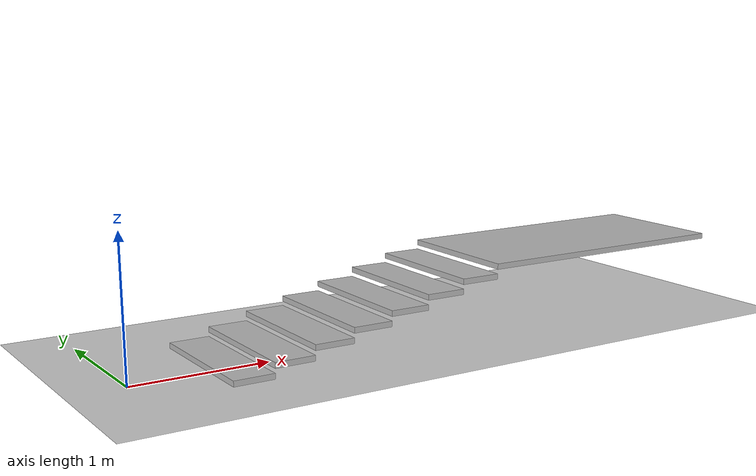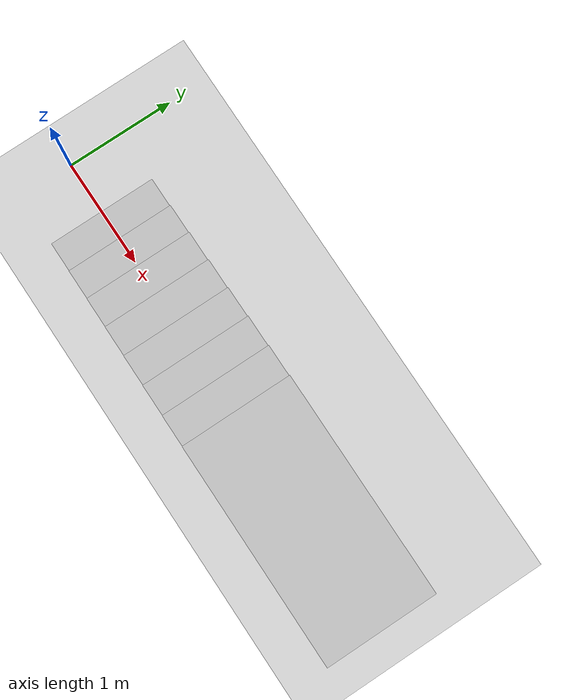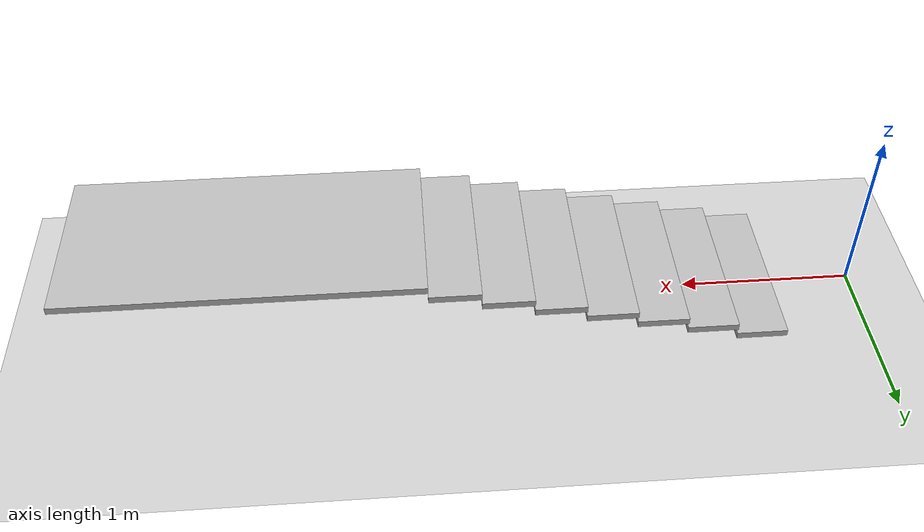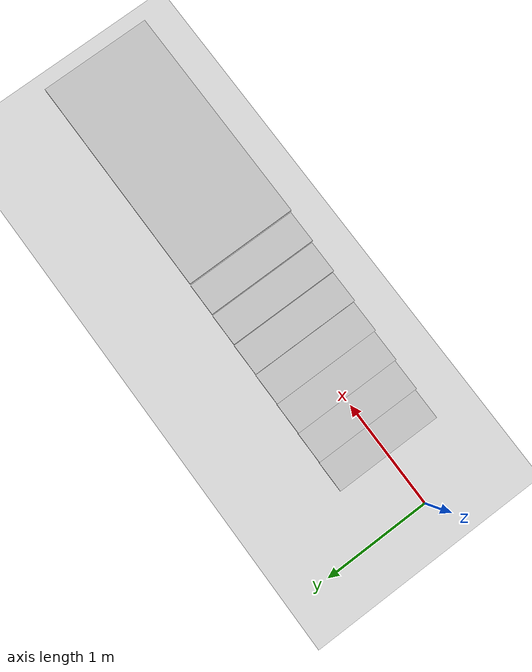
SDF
<?xml version="1.0" ?>
<sdf version="1.4">
  <world name="default">
    <include>
      <uri>model://ground_plane</uri>
    </include>
    <include>
      <uri>model://sun</uri>
    </include>
    <include>
    <uri>model://models/stairs</uri>
    </include>

    <physics type="ode">
      <gravity>0 0 -9.81</gravity>
    </physics>
  </world>
</sdf>

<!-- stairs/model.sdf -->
<sdf version='1.4'>
  <model name="stairs">
    <static>true</static>
    <pose>0.5 0 0 0 0 0</pose>

    <link name='stairs1'>
      <pose>0.145 0 0.07 0 0 0</pose>

      <collision name='collision'>
        <geometry>
          <box>
            <size>0.29 1.0 0.04</size>
          </box>
        </geometry>
      </collision>

      <visual name='visual'>
        <geometry>
          <box>
            <size>0.29 1.0 0.04</size>
          </box>
        </geometry>
      </visual>
    </link>

    <link name='stairs2'>
      <pose>0.435 0 0.14 0 0 0</pose>

      <collision name='collision'>
        <geometry>
          <box>
            <size>0.29 1.0 0.04</size>
          </box>
        </geometry>
      </collision>

      <visual name='visual'>
        <geometry>
          <box>
            <size>0.29 1.0 0.04</size>
          </box>
        </geometry>
      </visual>
    </link>

    <link name='stairs3'>
      <pose>0.725 0 0.21 0 0 0</pose>

      <collision name='collision'>
        <geometry>
          <box>
            <size>0.29 1.0 0.04</size>
          </box>
        </geometry>
      </collision>

      <visual name='visual'>
        <geometry>
          <box>
            <size>0.29 1.0 0.04</size>
          </box>
        </geometry>
      </visual>
    </link>

    <link name='stairs4'>
      <pose>1.015 0 0.28 0 0 0</pose>

      <collision name='collision'>
        <geometry>
          <box>
            <size>0.29 1.0 0.04</size>
          </box>
        </geometry>
      </collision>

      <visual name='visual'>
        <geometry>
          <box>
            <size>0.29 1.0 0.04</size>
          </box>
        </geometry>
      </visual>
    </link>

    <link name='stairs5'>
      <pose>1.305 0 0.35 0 0 0</pose>

      <collision name='collision'>
        <geometry>
          <box>
            <size>0.29 1.0 0.04</size>
          </box>
        </geometry>
      </collision>

      <visual name='visual'>
        <geometry>
          <box>
            <size>0.29 1.0 0.04</size>
          </box>
        </geometry>
      </visual>
    </link>

    <link name='stairs6'>
      <pose>1.595 0 0.42 0 0 0</pose>

      <collision name='collision'>
        <geometry>
          <box>
            <size>0.29 1.0 0.04</size>
          </box>
        </geometry>
      </collision>

      <visual name='visual'>
        <geometry>
          <box>
            <size>0.29 1.0 0.04</size>
          </box>
        </geometry>
      </visual>
    </link>

    <link name='stairs7'>
      <pose>1.885 0 0.49 0 0 0</pose>

      <collision name='collision'>
        <geometry>
          <box>
            <size>0.29 1.0 0.04</size>
          </box>
        </geometry>
      </collision>

      <visual name='visual'>
        <geometry>
          <box>
            <size>0.29 1.0 0.04</size>
          </box>
        </geometry>
      </visual>
    </link>

    <link name='top'>
      <pose>3.03 0 0.56 0 0 0</pose>

      <collision name='collision'>
        <geometry>
          <box>
            <size>2.0 1.0 0.04</size>
          </box>
        </geometry>
      </collision>

      <visual name='visual'>
        <geometry>
          <box>
            <size>2.0 1.0 0.04</size>
          </box>
        </geometry>
      </visual>
    </link>
  </model>
</sdf>
